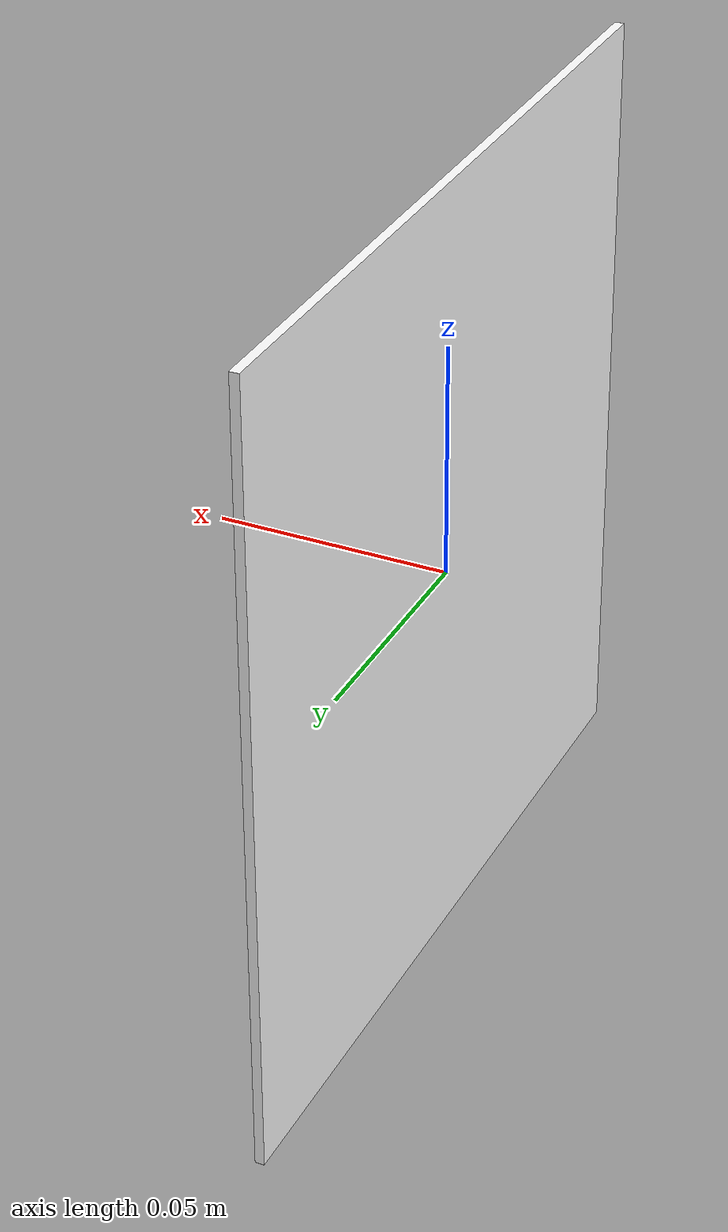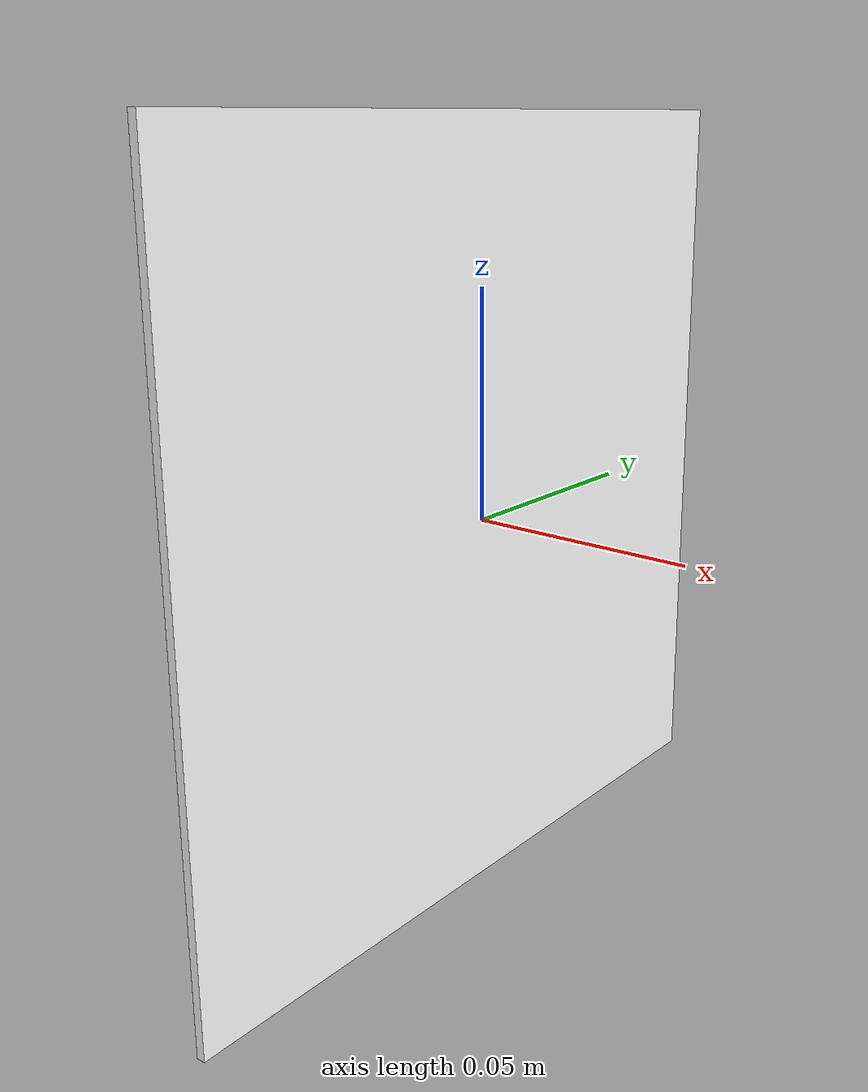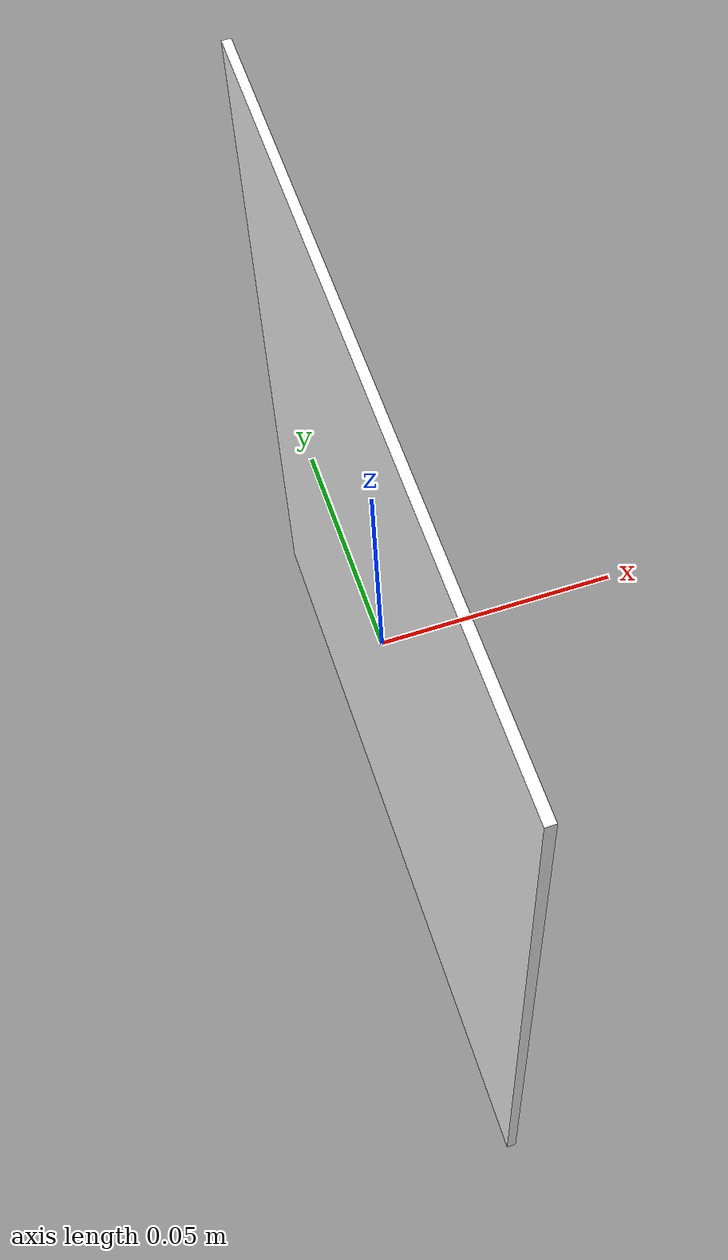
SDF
<sdf version="1.8">
  <model name="marker_13">
    <static>true</static>
    <link name="marker_13_link">
      <collision name="marker_13_collision">
        <geometry>
          <box>
            <size>0.002 0.17 0.17</size>
          </box>
        </geometry>
      </collision>
      <visual name="marker_13_visual">
        <geometry>
          <box>
            <size>0.002 0.17 0.17</size>
          </box>
        </geometry>
        <material>
          <ambient>1 1 1 1</ambient>
          <diffuse>1 1 1 1</diffuse>
          <specular>0 0 0 1</specular>
          <emissive>1 1 1 1</emissive>
          <pbr>
            <metal>
              <albedo_map>model://marker_13/materials/textures/marker_13.png</albedo_map>
              <emissive_map>model://marker_13/materials/textures/marker_13.png</emissive_map>
            </metal>
          </pbr>
        </material>
      </visual>
    </link>
  </model>
</sdf>
